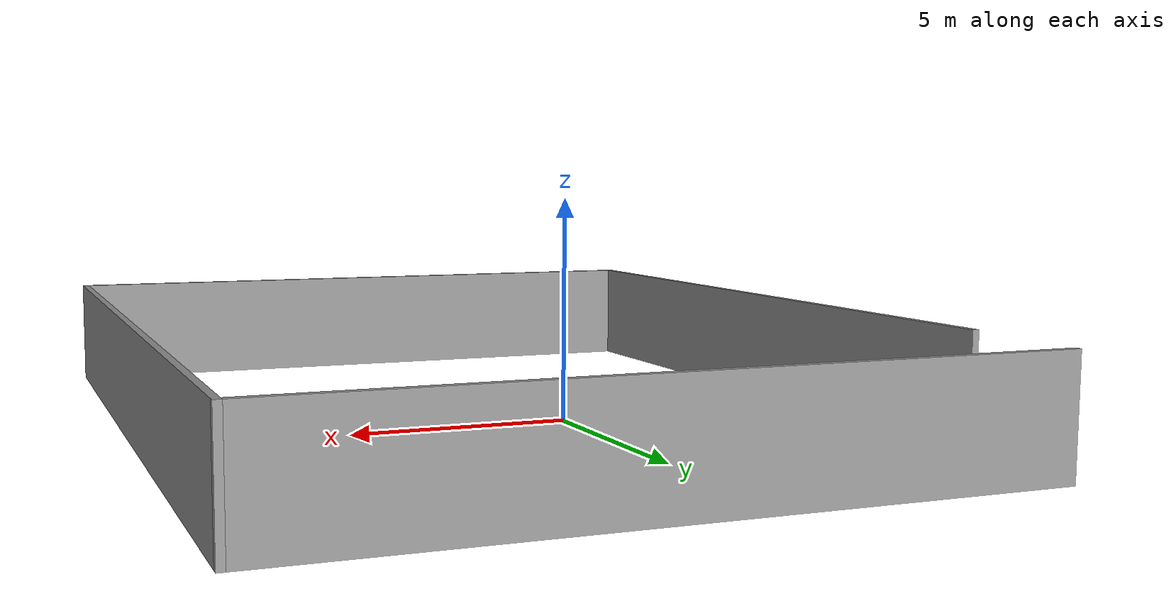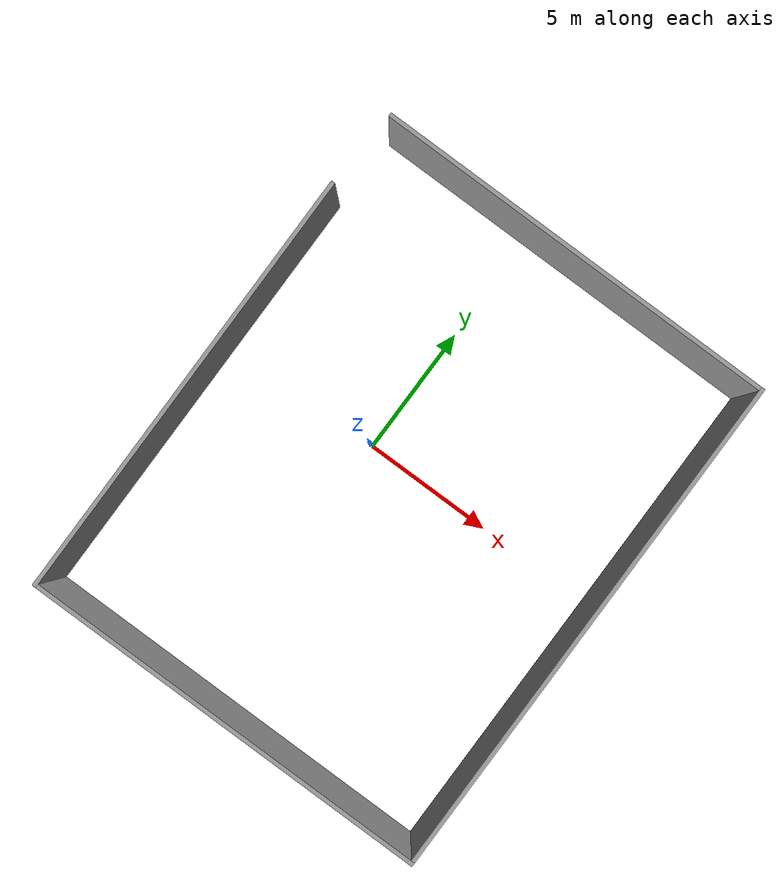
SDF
<?xml version='1.0'?>
<sdf version='1.7'>
  <model name='myhouse'>
    <pose>1.6467 -0.6267 0 0 -0 0</pose>
    <link name='Wall_3'>
      <collision name='Wall_3_Collision'>
        <geometry>
          <box>
            <size>16.75 0.15 2.5</size>
          </box>
        </geometry>
        <pose>0 0 1.25 0 -0 0</pose>
      </collision>
      <visual name='Wall_3_Visual'>
        <pose>0 0 1.25 0 -0 0</pose>
        <geometry>
          <box>
            <size>16.75 0.15 2.5</size>
          </box>
        </geometry>
        <material>
          <script>
            <uri>file://media/materials/scripts/gazebo.material</uri>
            <name>Gazebo/Grey</name>
          </script>
          <ambient>1 1 1 1</ambient>
        </material>
        <meta>
          <layer>0</layer>
        </meta>
      </visual>
      <pose>-7.8 -1.5 0 0 -0 -1.5708</pose>
    </link>
    <link name='Wall_4'>
      <collision name='Wall_4_Collision'>
        <geometry>
          <box>
            <size>15.75 0.15 2.5</size>
          </box>
        </geometry>
        <pose>0 0 1.25 0 -0 0</pose>
      </collision>
      <visual name='Wall_4_Visual'>
        <pose>0 0 1.25 0 -0 0</pose>
        <geometry>
          <box>
            <size>15.75 0.15 2.5</size>
          </box>
        </geometry>
        <material>
          <script>
            <uri>file://media/materials/scripts/gazebo.material</uri>
            <name>Gazebo/Grey</name>
          </script>
          <ambient>1 1 1 1</ambient>
        </material>
        <meta>
          <layer>0</layer>
        </meta>
      </visual>
      <pose>0 -9.8 0 0 -0 0</pose>
    </link>
    <link name='Wall_5'>
      <collision name='Wall_5_Collision'>
        <geometry>
          <box>
            <size>19.75 0.15 2.5</size>
          </box>
        </geometry>
        <pose>0 0 1.25 0 -0 0</pose>
      </collision>
      <visual name='Wall_5_Visual'>
        <pose>0 0 1.25 0 -0 0</pose>
        <geometry>
          <box>
            <size>19.75 0.15 2.5</size>
          </box>
        </geometry>
        <material>
          <script>
            <uri>file://media/materials/scripts/gazebo.material</uri>
            <name>Gazebo/Grey</name>
          </script>
          <ambient>1 1 1 1</ambient>
        </material>
        <meta>
          <layer>0</layer>
        </meta>
      </visual>
      <pose>7.8 -0 0 0 -0 1.5708</pose>
    </link>
    <link name='Wall_6'>
      <collision name='Wall_6_Collision'>
        <geometry>
          <box>
            <size>15.5 0.15 2.5</size>
          </box>
        </geometry>
        <pose>0 0 1.25 0 -0 0</pose>
      </collision>
      <visual name='Wall_6_Visual'>
        <pose>0 0 1.25 0 -0 0</pose>
        <geometry>
          <box>
            <size>15.5 0.15 2.5</size>
          </box>
        </geometry>
        <material>
          <script>
            <uri>file://media/materials/scripts/gazebo.material</uri>
            <name>Gazebo/Grey</name>
          </script>
          <ambient>1 1 1 1</ambient>
        </material>
        <meta>
          <layer>0</layer>
        </meta>
      </visual>
      <pose>0.125 9.8 0 0 -0 3.14159</pose>
    </link>
    <static>1</static>
  </model>
</sdf>
